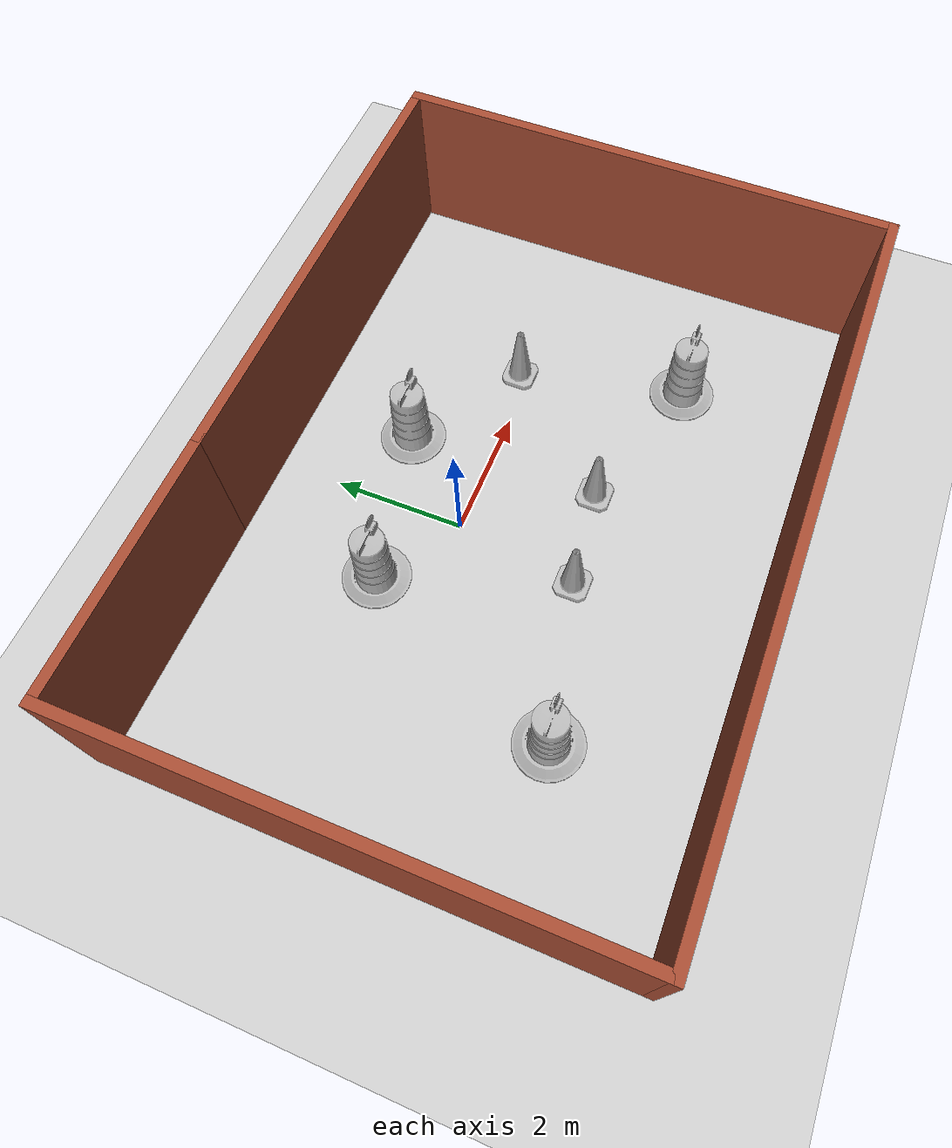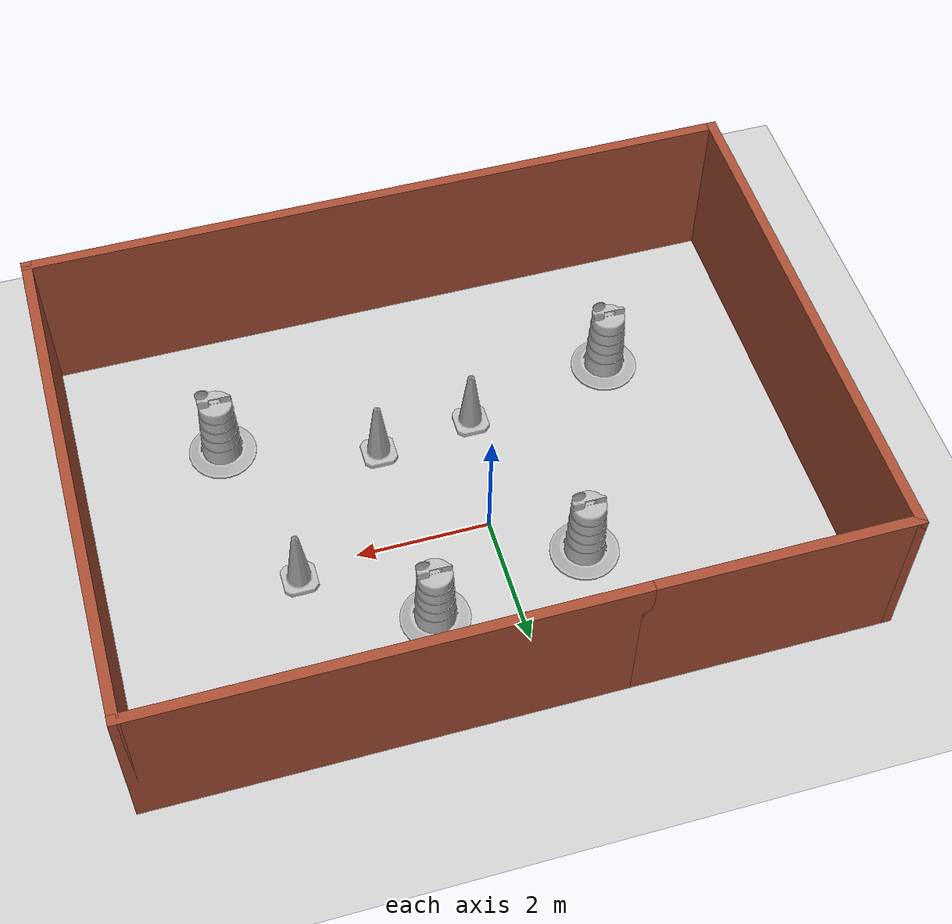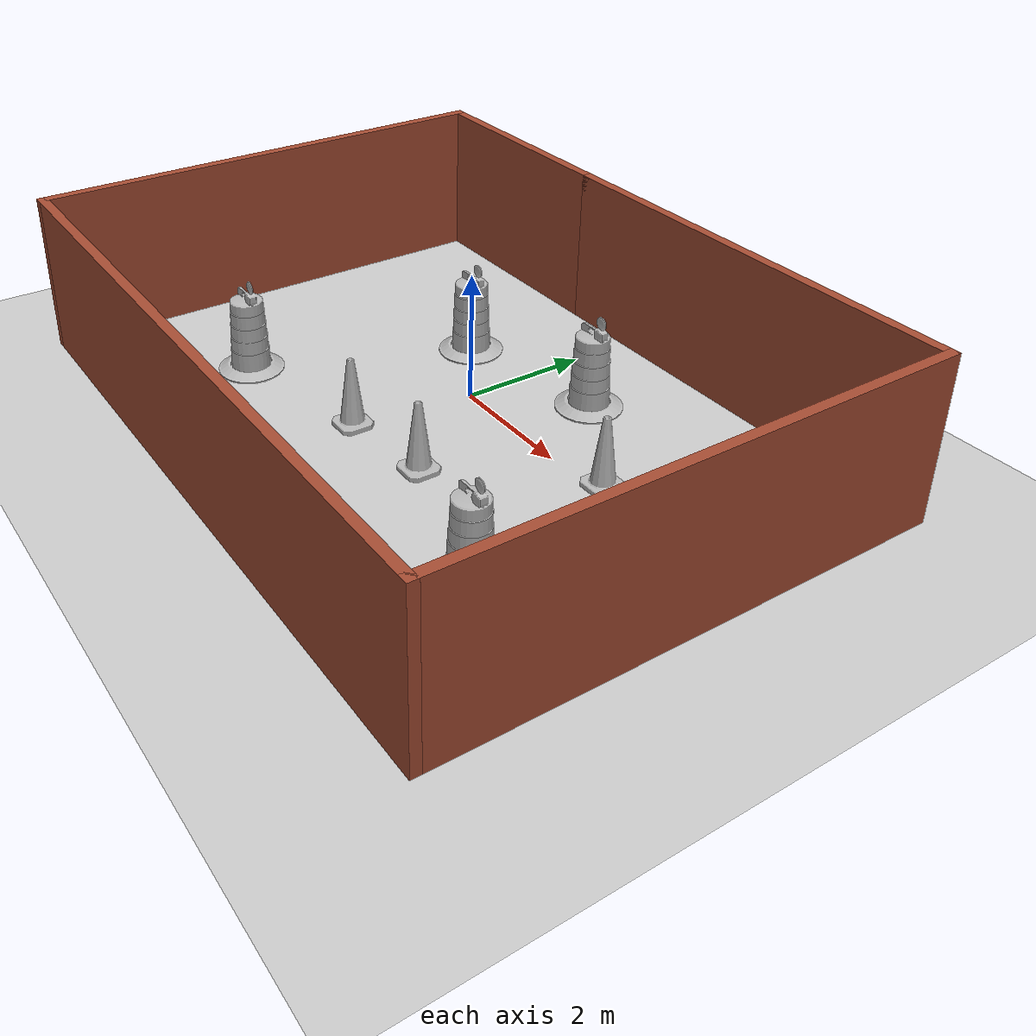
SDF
<sdf version="1.7">
 <world name="default">
  <light name="sun" type="directional">
   <pose>0 0 10 0 -0 0</pose>
   <diffuse>0.8 0.8 0.8 1</diffuse>
   <specular>0.2 0.2 0.2 1</specular>
   <attenuation>
    <range>1000</range>
    <constant>0.9</constant>
    <linear>0.01</linear>
    <quadratic>0.001</quadratic>
   </attenuation>
   <direction>-0.5 0.1 -0.9</direction>
   <spot><inner_angle>0</inner_angle><outer_angle>0</outer_angle><falloff>0</falloff></spot>
  </light>
  <model name="ground_plane">
   <static>1</static>
   <link name="link">
    <collision name="collision">
     <geometry><plane><normal>0 0 1</normal><size>100 100</size></plane></geometry>
     <surface><friction><ode><mu>100</mu><mu2>50</mu2></ode></friction></surface>
    </collision>
    <visual name="visual">
     <cast_shadows>0</cast_shadows>
     <geometry><plane><normal>0 0 1</normal><size>100 100</size></plane></geometry>
     <material>
      <script><uri>file://media/materials/scripts/gazebo.material</uri><name>Gazebo/Grey</name></script>
     </material>
    </visual>
   </link>
  </model>
  <gravity>0 0 -9.8</gravity>
  <magnetic_field>6e-06 2.3e-05 -4.2e-05</magnetic_field>
  <atmosphere type="adiabatic"/>
  <physics type="ode">
   <max_step_size>0.001</max_step_size>
   <real_time_factor>1</real_time_factor>
   <real_time_update_rate>1000</real_time_update_rate>
  </physics>
  <scene><ambient>0.4 0.4 0.4 1</ambient><background>0.7 0.7 0.7 1</background><shadows>1</shadows></scene>
  <audio><device>default</device></audio>
  <spherical_coordinates>
   <surface_model>EARTH_WGS84</surface_model>
   <latitude_deg>0</latitude_deg>
   <longitude_deg>0</longitude_deg>
   <elevation>0</elevation>
   <heading_deg>0</heading_deg>
  </spherical_coordinates>
  <model name="Construction Barrel">
   <link name="link">
    <inertial>
     <pose>0 0 0.4 0 -0 0</pose>
     <mass>500</mass>
     <inertia><ixx>51.2096</ixx><iyy>51.2096</iyy><izz>25</izz><ixy>0</ixy><ixz>0</ixz><iyz>0</iyz></inertia>
    </inertial>
    <collision name="collision">
     <geometry><mesh><uri>model://construction_barrel/meshes/construction_barrel.dae</uri></mesh></geometry>
    </collision>
    <visual name="visual">
     <geometry><mesh><uri>model://construction_barrel/meshes/construction_barrel.dae</uri></mesh></geometry>
    </visual>
   </link>
   <pose>-1.19239 0.815641 1e-06 3e-06 2e-06 -1.5e-05</pose>
  </model>
  <model name="Construction Cone">
   <link name="link">
    <collision name="collision">
     <geometry>
      <mesh><scale>10 10 10</scale><uri>model://construction_cone/meshes/construction_cone.dae</uri></mesh>
     </geometry>
    </collision>
    <visual name="visual">
     <geometry>
      <mesh><scale>10 10 10</scale><uri>model://construction_cone/meshes/construction_cone.dae</uri></mesh>
     </geometry>
    </visual>
    <inertial>
     <inertia><ixx>1</ixx><ixy>0</ixy><ixz>0</ixz><iyy>1</iyy><iyz>0</iyz><izz>1</izz></inertia>
     <mass>1</mass>
    </inertial>
   </link>
   <pose>-0.258406 -1.87874 -0 0 -1e-06 0</pose>
  </model>
  <model name="Construction Cone_0">
   <link name="link">
    <collision name="collision">
     <geometry>
      <mesh><scale>10 10 10</scale><uri>model://construction_cone/meshes/construction_cone.dae</uri></mesh>
     </geometry>
    </collision>
    <visual name="visual">
     <geometry>
      <mesh><scale>10 10 10</scale><uri>model://construction_cone/meshes/construction_cone.dae</uri></mesh>
     </geometry>
    </visual>
    <inertial>
     <inertia><ixx>1</ixx><ixy>0</ixy><ixz>0</ixz><iyy>1</iyy><iyz>0</iyz><izz>1</izz></inertia>
     <mass>1</mass>
    </inertial>
   </link>
   <pose>1.23675 -1.68874 -0 0 -1e-06 0</pose>
  </model>
  <model name="Construction Cone_1">
   <link name="link">
    <collision name="collision">
     <geometry>
      <mesh><scale>10 10 10</scale><uri>model://construction_cone/meshes/construction_cone.dae</uri></mesh>
     </geometry>
    </collision>
    <visual name="visual">
     <geometry>
      <mesh><scale>10 10 10</scale><uri>model://construction_cone/meshes/construction_cone.dae</uri></mesh>
     </geometry>
    </visual>
    <inertial>
     <inertia><ixx>1</ixx><ixy>0</ixy><ixz>0</ixz><iyy>1</iyy><iyz>0</iyz><izz>1</izz></inertia>
     <mass>1</mass>
    </inertial>
   </link>
   <pose>2.89392 0.175834 -1e-05 -1e-06 0 0</pose>
  </model>
  <model name="Construction Barrel_0">
   <link name="link">
    <inertial>
     <pose>0 0 0.4 0 -0 0</pose>
     <mass>500</mass>
     <inertia><ixx>51.2096</ixx><iyy>51.2096</iyy><izz>25</izz><ixy>0</ixy><ixz>0</ixz><iyz>0</iyz></inertia>
    </inertial>
    <collision name="collision">
     <geometry><mesh><uri>model://construction_barrel/meshes/construction_barrel.dae</uri></mesh></geometry>
    </collision>
    <visual name="visual">
     <geometry><mesh><uri>model://construction_barrel/meshes/construction_barrel.dae</uri></mesh></geometry>
    </visual>
   </link>
   <pose>3.4978 -2.36907 0 0 0 -9e-06</pose>
  </model>
  <model name="Construction Barrel_1">
   <link name="link">
    <inertial>
     <pose>0 0 0.4 0 -0 0</pose>
     <mass>500</mass>
     <inertia><ixx>51.2096</ixx><iyy>51.2096</iyy><izz>25</izz><ixy>0</ixy><ixz>0</ixz><iyz>0</iyz></inertia>
    </inertial>
    <collision name="collision">
     <geometry><mesh><uri>model://construction_barrel/meshes/construction_barrel.dae</uri></mesh></geometry>
    </collision>
    <visual name="visual">
     <geometry><mesh><uri>model://construction_barrel/meshes/construction_barrel.dae</uri></mesh></geometry>
    </visual>
   </link>
   <pose>-2.572 -2.38273 0 -0 1e-06 -8e-06</pose>
  </model>
  <model name="Construction Barrel_2">
   <link name="link">
    <inertial>
     <pose>0 0 0.4 0 -0 0</pose>
     <mass>500</mass>
     <inertia><ixx>51.2096</ixx><iyy>51.2096</iyy><izz>25</izz><ixy>0</ixy><ixz>0</ixz><iyz>0</iyz></inertia>
    </inertial>
    <collision name="collision">
     <geometry><mesh><uri>model://construction_barrel/meshes/construction_barrel.dae</uri></mesh></geometry>
    </collision>
    <visual name="visual">
     <geometry><mesh><uri>model://construction_barrel/meshes/construction_barrel.dae</uri></mesh></geometry>
    </visual>
   </link>
   <pose>1.18886 1.30884 0 0 -0 -7e-06</pose>
  </model>
  <model name="world_1">
   <pose>0.392565 -0.760317 0 0 -0 0</pose>
   <link name="Wall_3">
    <collision name="Wall_3_Collision">
     <geometry><box><size>7 0.15 2.5</size></box></geometry>
     <pose>0 0 1.25 0 -0 0</pose>
    </collision>
    <visual name="Wall_3_Visual">
     <pose>0 0 1.25 0 -0 0</pose>
     <geometry><box><size>7 0.15 2.5</size></box></geometry>
     <material>
      <script><uri>file://media/materials/scripts/gazebo.material</uri><name>Gazebo/Bricks</name></script>
      <ambient>1 1 1 1</ambient>
     </material>
     <meta><layer>0</layer></meta>
    </visual>
    <pose>1.875 3.8 0 0 -0 0</pose>
   </link>
   <link name="Wall_4">
    <collision name="Wall_4_Collision">
     <geometry><box><size>7.75 0.15 2.5</size></box></geometry>
     <pose>0 0 1.25 0 -0 0</pose>
    </collision>
    <visual name="Wall_4_Visual">
     <pose>0 0 1.25 0 -0 0</pose>
     <geometry><box><size>7.75 0.15 2.5</size></box></geometry>
     <material>
      <script><uri>file://media/materials/scripts/gazebo.material</uri><name>Gazebo/Bricks</name></script>
      <ambient>1 1 1 1</ambient>
     </material>
     <meta><layer>0</layer></meta>
    </visual>
    <pose>5.3 -0 0 0 -0 -1.5708</pose>
   </link>
   <link name="Wall_5">
    <collision name="Wall_5_Collision">
     <geometry><box><size>10.75 0.15 2.5</size></box></geometry>
     <pose>0 0 1.25 0 -0 0</pose>
    </collision>
    <visual name="Wall_5_Visual">
     <pose>0 0 1.25 0 -0 0</pose>
     <geometry><box><size>10.75 0.15 2.5</size></box></geometry>
     <material>
      <script><uri>file://media/materials/scripts/gazebo.material</uri><name>Gazebo/Bricks</name></script>
      <ambient>1 1 1 1</ambient>
     </material>
     <meta><layer>0</layer></meta>
    </visual>
    <pose>-0 -3.8 0 0 -0 3.14159</pose>
   </link>
   <link name="Wall_6">
    <collision name="Wall_6_Collision">
     <geometry><box><size>7.75 0.15 2.5</size></box></geometry>
     <pose>0 0 1.25 0 -0 0</pose>
    </collision>
    <visual name="Wall_6_Visual">
     <pose>0 0 1.25 0 -0 0</pose>
     <geometry><box><size>7.75 0.15 2.5</size></box></geometry>
     <material>
      <script><uri>file://media/materials/scripts/gazebo.material</uri><name>Gazebo/Bricks</name></script>
      <ambient>1 1 1 1</ambient>
     </material>
     <meta><layer>0</layer></meta>
    </visual>
    <pose>-5.3 -0 0 0 -0 1.5708</pose>
   </link>
   <link name="Wall_7">
    <collision name="Wall_7_Collision">
     <geometry><box><size>3.9 0.15 2.5</size></box></geometry>
     <pose>0 0 1.25 0 -0 0</pose>
    </collision>
    <visual name="Wall_7_Visual">
     <pose>0 0 1.25 0 -0 0</pose>
     <geometry><box><size>3.9 0.15 2.5</size></box></geometry>
     <material>
      <script><uri>file://media/materials/scripts/gazebo.material</uri><name>Gazebo/Bricks</name></script>
      <ambient>1 1 1 1</ambient>
     </material>
     <meta><layer>0</layer></meta>
    </visual>
    <pose>-3.425 3.8 0 0 -0 0</pose>
   </link>
   <static>1</static>
  </model>
 </world>
</sdf>
